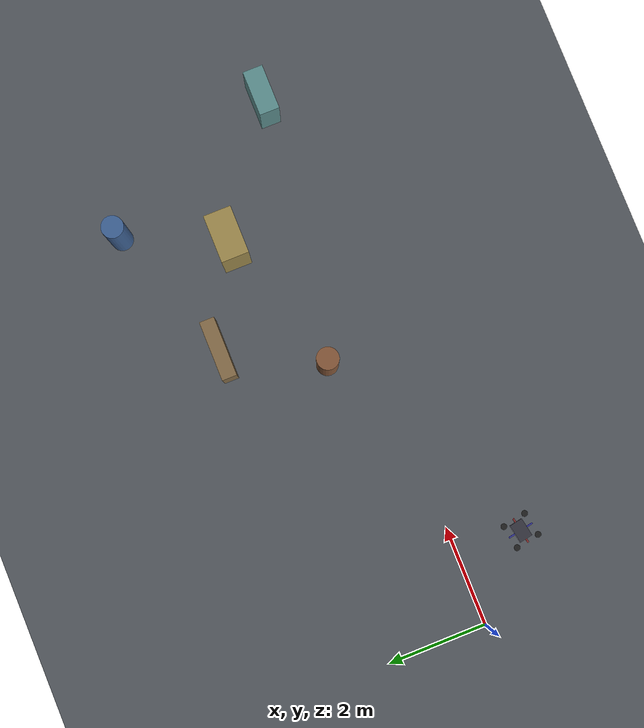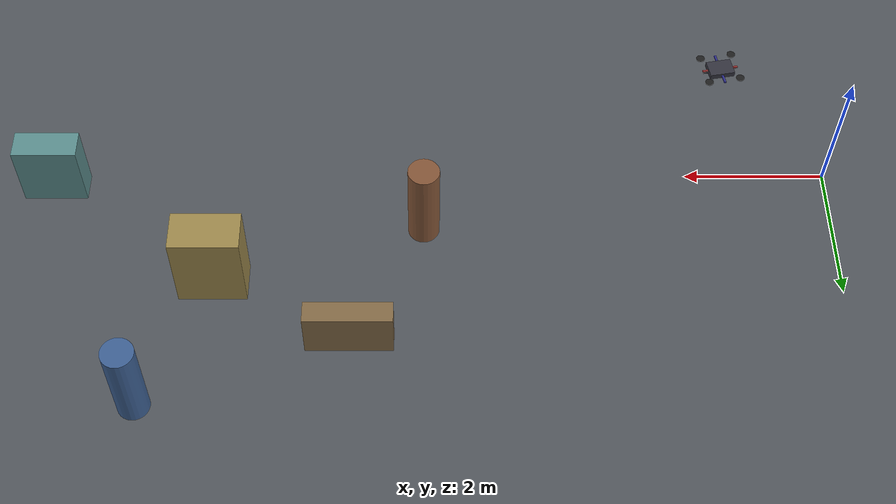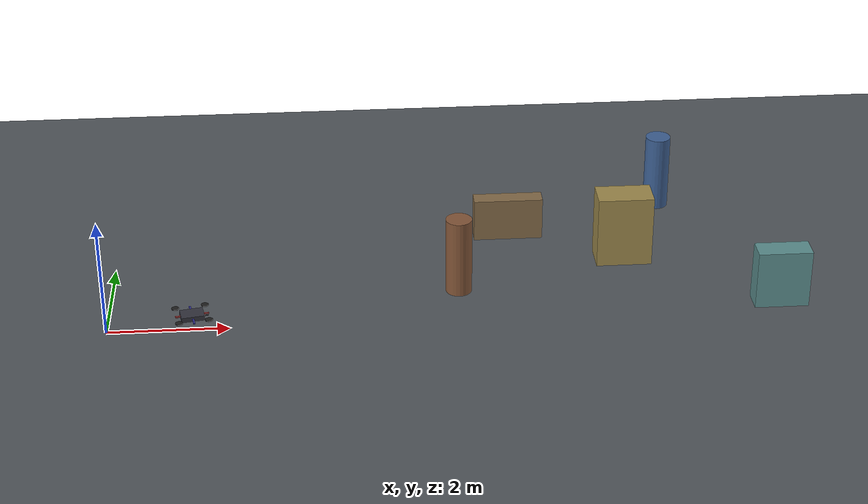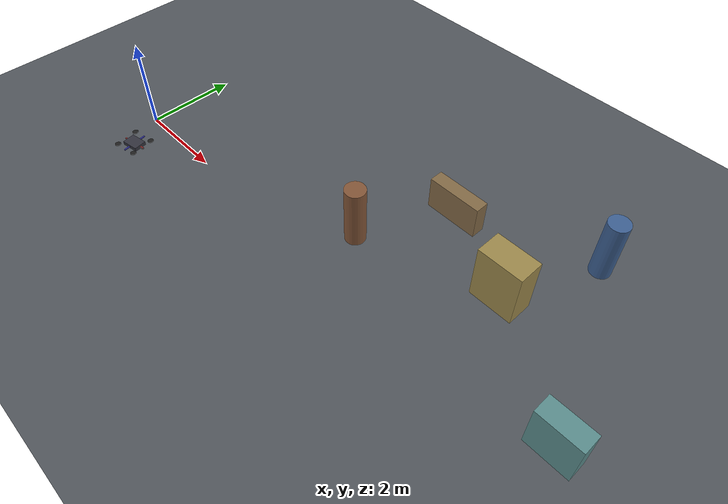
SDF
<sdf version="1.9">
 <world name="pedestrian_clean_6agents_staticobs">
  <gravity>0 0 -9.8</gravity>
  <plugin filename="ignition-gazebo-physics-system" name="ignition::gazebo::systems::Physics"/>
  <plugin filename="ignition-gazebo-user-commands-system" name="ignition::gazebo::systems::UserCommands"/>
  <plugin filename="ignition-gazebo-scene-broadcaster-system" name="ignition::gazebo::systems::SceneBroadcaster"/>
  <plugin filename="ignition-gazebo-sensors-system" name="ignition::gazebo::systems::Sensors">
   <render_engine>ogre2</render_engine>
  </plugin>
  <plugin filename="ignition-gazebo-imu-system" name="ignition::gazebo::systems::Imu"/>
  <plugin filename="libuav_pose_sync_system.so" name="depth_eval::UavPoseSyncSystem">
   <pose_topic>/uav_motion/pose_cmd</pose_topic>
   <model_name>uav_main</model_name>
  </plugin>
  <plugin filename="libpedestrian_pose_sync_system.so" name="depth_eval::PedestrianPoseSyncSystem">
   <pose_topic>/pedestrian_sim/agent_states</pose_topic>
   <model_name>commuter_1</model_name>
   <model_name>commuter_2</model_name>
   <model_name>commuter_3</model_name>
   <model_name>commuter_4</model_name>
   <model_name>commuter_5</model_name>
   <model_name>commuter_6</model_name>
  </plugin>
  <scene><ambient>0.6 0.6 0.6 1</ambient><background>0.7 0.85 1.0 1</background><grid>false</grid></scene>
  <light type="directional" name="sun">
   <pose>0 0 10 0 0 0</pose>
   <diffuse>0.85 0.85 0.85 1.0</diffuse>
   <specular>0.2 0.2 0.2 1.0</specular>
   <direction>-0.4 0.2 -0.9</direction>
  </light>
  <model name="ground_plane">
   <static>true</static>
   <link name="link">
    <collision name="collision">
     <geometry><plane><normal>0 0 1</normal><size>90.0 90.0</size></plane></geometry>
    </collision>
    <visual name="visual">
     <geometry><plane><normal>0 0 1</normal><size>90.0 90.0</size></plane></geometry>
     <material><ambient>0.28 0.3 0.32 1</ambient><diffuse>0.32 0.34 0.36 1</diffuse></material>
    </visual>
   </link>
  </model>
  <include>
   <uri>model://uav_d435i_platform</uri>
   <name>uav_main</name>
   <pose>1.500 -1.200 1.000 0 0 0.18000</pose>
  </include>
  <model name="clean_pillar_mid">
   <static>true</static>
   <pose>5.800 0.950 0.675 0 0 0</pose>
   <link name="link">
    <collision name="collision">
     <geometry><cylinder><radius>0.220</radius><length>1.350</length></cylinder></geometry>
    </collision>
    <visual name="visual">
     <geometry><cylinder><radius>0.220</radius><length>1.350</length></cylinder></geometry>
     <material><ambient>0.426 0.279 0.180 1</ambient><diffuse>0.520 0.340 0.220 1</diffuse></material>
    </visual>
   </link>
  </model>
  <model name="clean_kiosk_inner">
   <static>true</static>
   <pose>8.700 1.850 0.625 0 0 0</pose>
   <link name="link">
    <collision name="collision"><geometry><box><size>0.950 0.550 1.250</size></box></geometry></collision>
    <visual name="visual">
     <geometry><box><size>0.950 0.550 1.250</size></box></geometry>
     <material><ambient>0.508 0.443 0.246 1</ambient><diffuse>0.620 0.540 0.300 1</diffuse></material>
    </visual>
   </link>
  </model>
  <model name="clean_divider_low">
   <static>true</static>
   <pose>11.100 0.200 0.500 0 0 0</pose>
   <link name="link">
    <collision name="collision"><geometry><box><size>0.900 0.400 1.000</size></box></geometry></collision>
    <visual name="visual">
     <geometry><box><size>0.900 0.400 1.000</size></box></geometry>
     <material><ambient>0.295 0.459 0.459 1</ambient><diffuse>0.360 0.560 0.560 1</diffuse></material>
    </visual>
   </link>
  </model>
  <model name="clean_bench_upper">
   <static>true</static>
   <pose>6.800 2.800 0.375 0 0 0</pose>
   <link name="link">
    <collision name="collision"><geometry><box><size>1.200 0.300 0.750</size></box></geometry></collision>
    <visual name="visual">
     <geometry><box><size>1.200 0.300 0.750</size></box></geometry>
     <material><ambient>0.426 0.344 0.230 1</ambient><diffuse>0.520 0.420 0.280 1</diffuse></material>
    </visual>
   </link>
  </model>
  <model name="clean_pillar_outer">
   <static>true</static>
   <pose>9.600 3.780 0.675 0 0 0</pose>
   <link name="link">
    <collision name="collision">
     <geometry><cylinder><radius>0.220</radius><length>1.350</length></cylinder></geometry>
    </collision>
    <visual name="visual">
     <geometry><cylinder><radius>0.220</radius><length>1.350</length></cylinder></geometry>
     <material><ambient>0.197 0.312 0.476 1</ambient><diffuse>0.240 0.380 0.580 1</diffuse></material>
    </visual>
   </link>
  </model>
 </world>
</sdf>

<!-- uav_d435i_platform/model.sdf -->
<sdf version="1.9">
  <model name="uav_d435i_platform">
    <static>true</static>
    <self_collide>false</self_collide>

    <link name="base_link">
      <gravity>false</gravity>
      <velocity_decay>
        <linear>0.2</linear>
        <angular>0.2</angular>
      </velocity_decay>
      <inertial>
        <mass>1.4</mass>
        <inertia>
          <ixx>0.03</ixx>
          <ixy>0.0</ixy>
          <ixz>0.0</ixz>
          <iyy>0.03</iyy>
          <iyz>0.0</iyz>
          <izz>0.05</izz>
        </inertia>
      </inertial>

      <visual name="body_visual">
        <geometry>
          <box>
            <size>0.36 0.26 0.08</size>
          </box>
        </geometry>
        <material>
          <ambient>0.16 0.16 0.18 1</ambient>
          <diffuse>0.20 0.20 0.24 1</diffuse>
        </material>
      </visual>

      <visual name="front_camera_housing">
        <pose>0.19 0.0 -0.02 0 0 0</pose>
        <geometry>
          <box>
            <size>0.12 0.03 0.03</size>
          </box>
        </geometry>
        <material>
          <ambient>0.06 0.06 0.07 1</ambient>
          <diffuse>0.10 0.10 0.12 1</diffuse>
        </material>
      </visual>

      <visual name="arm_x">
        <geometry>
          <box>
            <size>0.52 0.03 0.02</size>
          </box>
        </geometry>
        <material>
          <ambient>0.42 0.14 0.14 1</ambient>
          <diffuse>0.56 0.18 0.18 1</diffuse>
        </material>
      </visual>

      <visual name="arm_y">
        <geometry>
          <box>
            <size>0.03 0.52 0.02</size>
          </box>
        </geometry>
        <material>
          <ambient>0.14 0.14 0.42 1</ambient>
          <diffuse>0.18 0.18 0.56 1</diffuse>
        </material>
      </visual>

      <visual name="rotor_fl">
        <pose>0.23 0.23 0.02 0 0 0</pose>
        <geometry>
          <cylinder>
            <radius>0.06</radius>
            <length>0.01</length>
          </cylinder>
        </geometry>
        <material>
          <ambient>0.08 0.08 0.08 1</ambient>
          <diffuse>0.12 0.12 0.12 1</diffuse>
        </material>
      </visual>

      <visual name="rotor_fr">
        <pose>0.23 -0.23 0.02 0 0 0</pose>
        <geometry>
          <cylinder>
            <radius>0.06</radius>
            <length>0.01</length>
          </cylinder>
        </geometry>
        <material>
          <ambient>0.08 0.08 0.08 1</ambient>
          <diffuse>0.12 0.12 0.12 1</diffuse>
        </material>
      </visual>

      <visual name="rotor_rl">
        <pose>-0.23 0.23 0.02 0 0 0</pose>
        <geometry>
          <cylinder>
            <radius>0.06</radius>
            <length>0.01</length>
          </cylinder>
        </geometry>
        <material>
          <ambient>0.08 0.08 0.08 1</ambient>
          <diffuse>0.12 0.12 0.12 1</diffuse>
        </material>
      </visual>

      <visual name="rotor_rr">
        <pose>-0.23 -0.23 0.02 0 0 0</pose>
        <geometry>
          <cylinder>
            <radius>0.06</radius>
            <length>0.01</length>
          </cylinder>
        </geometry>
        <material>
          <ambient>0.08 0.08 0.08 1</ambient>
          <diffuse>0.12 0.12 0.12 1</diffuse>
        </material>
      </visual>

      <sensor name="d435i_color" type="camera">
        <pose>0.30 0.0 0.05 0 0 0</pose>
        <camera>
          <horizontal_fov>1.211</horizontal_fov>
          <image>
            <width>640</width>
            <height>480</height>
            <format>R8G8B8</format>
          </image>
          <clip>
            <near>0.1</near>
            <far>10.0</far>
          </clip>
        </camera>
        <always_on>true</always_on>
        <update_rate>30</update_rate>
        <visualize>false</visualize>
        <topic>rgbd_camera_color</topic>
        <enable_metrics>false</enable_metrics>
      </sensor>

      <sensor name="d435i_depth" type="depth_camera">
        <pose>0.30 0.0 0.05 0 0 0</pose>
        <camera>
          <horizontal_fov>1.518</horizontal_fov>
          <image>
            <width>640</width>
            <height>480</height>
            <format>R_FLOAT32</format>
          </image>
          <clip>
            <near>0.1</near>
            <far>10.0</far>
          </clip>
          <depth_camera>
            <output>depths</output>
          </depth_camera>
          <noise>
            <type>gaussian</type>
            <mean>0.0</mean>
            <stddev>0.010</stddev>
          </noise>
        </camera>
        <always_on>true</always_on>
        <update_rate>30</update_rate>
        <visualize>false</visualize>
        <topic>rgbd_camera_depth</topic>
        <enable_metrics>false</enable_metrics>
      </sensor>

      <sensor name="d435i_imu" type="imu">
        <pose>0.02 0 0 0 0 0</pose>
        <always_on>true</always_on>
        <update_rate>200</update_rate>
        <visualize>false</visualize>
        <topic>camera/imu</topic>
        <enable_metrics>true</enable_metrics>
        <imu>
          <angular_velocity>
            <x>
              <noise type="gaussian">
                <mean>0.0</mean>
                <stddev>0.002</stddev>
              </noise>
            </x>
            <y>
              <noise type="gaussian">
                <mean>0.0</mean>
                <stddev>0.002</stddev>
              </noise>
            </y>
            <z>
              <noise type="gaussian">
                <mean>0.0</mean>
                <stddev>0.002</stddev>
              </noise>
            </z>
          </angular_velocity>
          <linear_acceleration>
            <x>
              <noise type="gaussian">
                <mean>0.0</mean>
                <stddev>0.02</stddev>
              </noise>
            </x>
            <y>
              <noise type="gaussian">
                <mean>0.0</mean>
                <stddev>0.02</stddev>
              </noise>
            </y>
            <z>
              <noise type="gaussian">
                <mean>0.0</mean>
                <stddev>0.02</stddev>
              </noise>
            </z>
          </linear_acceleration>
        </imu>
      </sensor>

      <sensor name="uav_lidar" type="gpu_lidar">
        <pose>0.18 0 0.06 0 0 0</pose>
        <always_on>true</always_on>
        <update_rate>10</update_rate>
        <visualize>false</visualize>
        <topic>uav_lidar/scan</topic>
        <ray>
          <scan>
            <horizontal>
              <samples>720</samples>
              <resolution>1</resolution>
              <min_angle>-3.1415926</min_angle>
              <max_angle>3.1415926</max_angle>
            </horizontal>
            <vertical>
              <samples>60</samples>
              <resolution>1</resolution>
              <min_angle>-0.122173</min_angle>
              <max_angle>0.907571</max_angle>
            </vertical>
          </scan>
          <range>
            <min>0.1</min>
            <max>70.0</max>
            <resolution>0.01</resolution>
          </range>
        </ray>
      </sensor>
    </link>
  </model>
</sdf>
